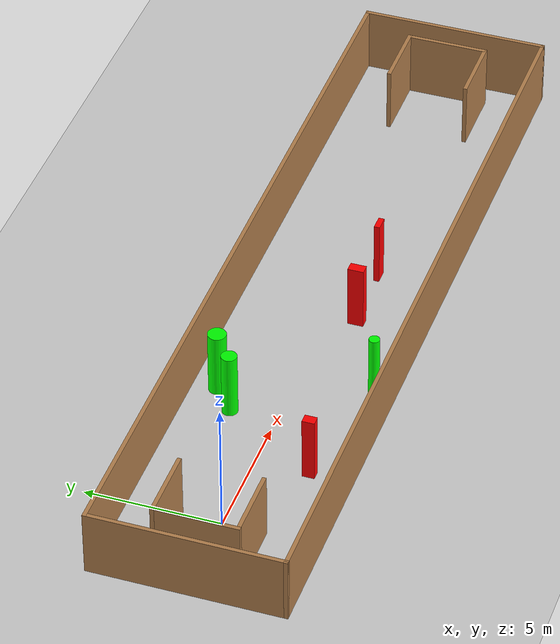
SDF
<sdf version="1.7">
 <world name="default">
  <light name="sun" type="directional">
   <pose>0 0 10 0 -0 0</pose>
   <diffuse>0.8 0.8 0.8 1</diffuse>
   <specular>0.2 0.2 0.2 1</specular>
   <attenuation>
    <range>1000</range>
    <constant>0.9</constant>
    <linear>0.01</linear>
    <quadratic>0.001</quadratic>
   </attenuation>
   <direction>-0.5 0.1 -0.9</direction>
   <spot><inner_angle>0</inner_angle><outer_angle>0</outer_angle><falloff>0</falloff></spot>
  </light>
  <model name="ground_plane">
   <static>1</static>
   <link name="link">
    <collision name="collision">
     <geometry><plane><normal>0 0 1</normal><size>100 100</size></plane></geometry>
     <surface>
      <contact><collide_bitmask>65535</collide_bitmask></contact>
      <friction><ode><mu>100</mu><mu2>50</mu2></ode></friction>
     </surface>
    </collision>
    <visual name="visual">
     <cast_shadows>0</cast_shadows>
     <geometry><plane><normal>0 0 1</normal><size>100 100</size></plane></geometry>
     <material>
      <script><uri>file://media/materials/scripts/gazebo.material</uri><name>Gazebo/Grey</name></script>
     </material>
    </visual>
   </link>
  </model>
  <gravity>0 0 -9.8</gravity>
  <magnetic_field>6e-06 2.3e-05 -4.2e-05</magnetic_field>
  <atmosphere type="adiabatic"/>
  <physics type="ode">
   <max_step_size>0.001</max_step_size>
   <real_time_factor>1</real_time_factor>
   <real_time_update_rate>1000</real_time_update_rate>
  </physics>
  <scene><ambient>0.4 0.4 0.4 1</ambient><background>0.7 0.7 0.7 1</background><shadows>1</shadows></scene>
  <spherical_coordinates>
   <surface_model>EARTH_WGS84</surface_model>
   <latitude_deg>0</latitude_deg>
   <longitude_deg>0</longitude_deg>
   <elevation>0</elevation>
   <heading_deg>0</heading_deg>
  </spherical_coordinates>
  <model name="my_base_walls">
   <link name="Wall_0">
    <collision name="Wall_0_Collision">
     <geometry><box><size>7.15 0.15 2.5</size></box></geometry>
     <pose>0 0 1.25 0 -0 0</pose>
    </collision>
    <visual name="Wall_0_Visual">
     <pose>0 0 1.25 0 -0 0</pose>
     <geometry><box><size>7.15 0.15 2.5</size></box></geometry>
     <material>
      <script><uri>file://media/materials/scripts/gazebo.material</uri><name>Gazebo/Wood</name></script>
      <ambient>1 1 1 1</ambient>
     </material>
     <meta><layer>0</layer></meta>
    </visual>
    <pose>-15 0 0 0 -0 1.5708</pose>
   </link>
   <link name="Wall_10">
    <collision name="Wall_10_Collision">
     <geometry><box><size>2.65 0.15 2.5</size></box></geometry>
     <pose>0 0 1.25 0 -0 0</pose>
    </collision>
    <visual name="Wall_10_Visual">
     <pose>0 0 1.25 0 -0 0</pose>
     <geometry><box><size>2.65 0.15 2.5</size></box></geometry>
     <material>
      <script><uri>file://media/materials/scripts/gazebo.material</uri><name>Gazebo/Wood</name></script>
      <ambient>1 1 1 1</ambient>
     </material>
     <meta><layer>0</layer></meta>
    </visual>
    <pose>-12.75 -1.5 0 0 -0 0</pose>
   </link>
   <link name="Wall_12">
    <collision name="Wall_12_Collision">
     <geometry><box><size>2.65 0.15 2.5</size></box></geometry>
     <pose>0 0 1.25 0 -0 0</pose>
    </collision>
    <visual name="Wall_12_Visual">
     <pose>0 0 1.25 0 -0 0</pose>
     <geometry><box><size>2.65 0.15 2.5</size></box></geometry>
     <material>
      <script><uri>file://media/materials/scripts/gazebo.material</uri><name>Gazebo/Wood</name></script>
      <ambient>1 1 1 1</ambient>
     </material>
     <meta><layer>0</layer></meta>
    </visual>
    <pose>-12.75 1.5 0 0 -0 0</pose>
   </link>
   <link name="Wall_14">
    <collision name="Wall_14_Collision">
     <geometry><box><size>3.15 0.15 2.5</size></box></geometry>
     <pose>0 0 1.25 0 -0 0</pose>
    </collision>
    <visual name="Wall_14_Visual">
     <pose>0 0 1.25 0 -0 0</pose>
     <geometry><box><size>3.15 0.15 2.5</size></box></geometry>
     <material>
      <script><uri>file://media/materials/scripts/gazebo.material</uri><name>Gazebo/Wood</name></script>
      <ambient>1 1 1 1</ambient>
     </material>
     <meta><layer>0</layer></meta>
    </visual>
    <pose>14 0 0 0 -0 -1.5708</pose>
   </link>
   <link name="Wall_15">
    <collision name="Wall_15_Collision">
     <geometry><box><size>2.65 0.15 2.5</size></box></geometry>
     <pose>0 0 1.25 0 -0 0</pose>
    </collision>
    <visual name="Wall_15_Visual">
     <pose>0 0 1.25 0 -0 0</pose>
     <geometry><box><size>2.65 0.15 2.5</size></box></geometry>
     <material>
      <script><uri>file://media/materials/scripts/gazebo.material</uri><name>Gazebo/Wood</name></script>
      <ambient>1 1 1 1</ambient>
     </material>
     <meta><layer>0</layer></meta>
    </visual>
    <pose>12.75 -1.5 0 0 -0 3.14159</pose>
   </link>
   <link name="Wall_17">
    <collision name="Wall_17_Collision">
     <geometry><box><size>2.65 0.15 2.5</size></box></geometry>
     <pose>0 0 1.25 0 -0 0</pose>
    </collision>
    <visual name="Wall_17_Visual">
     <pose>0 0 1.25 0 -0 0</pose>
     <geometry><box><size>2.65 0.15 2.5</size></box></geometry>
     <material>
      <script><uri>file://media/materials/scripts/gazebo.material</uri><name>Gazebo/Wood</name></script>
      <ambient>1 1 1 1</ambient>
     </material>
     <meta><layer>0</layer></meta>
    </visual>
    <pose>12.75 1.5 0 0 -0 3.14159</pose>
   </link>
   <link name="Wall_2">
    <collision name="Wall_2_Collision">
     <geometry><box><size>30.15 0.15 2.5</size></box></geometry>
     <pose>0 0 1.25 0 -0 0</pose>
    </collision>
    <visual name="Wall_2_Visual">
     <pose>0 0 1.25 0 -0 0</pose>
     <geometry><box><size>30.15 0.15 2.5</size></box></geometry>
     <material>
      <script><uri>file://media/materials/scripts/gazebo.material</uri><name>Gazebo/Wood</name></script>
      <ambient>1 1 1 1</ambient>
     </material>
     <meta><layer>0</layer></meta>
    </visual>
    <pose>-0 -3.5 0 0 -0 0</pose>
   </link>
   <link name="Wall_4">
    <collision name="Wall_4_Collision">
     <geometry><box><size>30.15 0.15 2.5</size></box></geometry>
     <pose>0 0 1.25 0 -0 0</pose>
    </collision>
    <visual name="Wall_4_Visual">
     <pose>0 0 1.25 0 -0 0</pose>
     <geometry><box><size>30.15 0.15 2.5</size></box></geometry>
     <material>
      <script><uri>file://media/materials/scripts/gazebo.material</uri><name>Gazebo/Wood</name></script>
      <ambient>1 1 1 1</ambient>
     </material>
     <meta><layer>0</layer></meta>
    </visual>
    <pose>-0 3.5 0 0 -0 0</pose>
   </link>
   <link name="Wall_6">
    <collision name="Wall_6_Collision">
     <geometry><box><size>7.15 0.15 2.5</size></box></geometry>
     <pose>0 0 1.25 0 -0 0</pose>
    </collision>
    <visual name="Wall_6_Visual">
     <pose>0 0 1.25 0 -0 0</pose>
     <geometry><box><size>7.15 0.15 2.5</size></box></geometry>
     <material>
      <script><uri>file://media/materials/scripts/gazebo.material</uri><name>Gazebo/Wood</name></script>
      <ambient>1 1 1 1</ambient>
     </material>
     <meta><layer>0</layer></meta>
    </visual>
    <pose>15 0 0 0 -0 -1.5708</pose>
   </link>
   <link name="Wall_9">
    <collision name="Wall_9_Collision">
     <geometry><box><size>3.15 0.15 2.5</size></box></geometry>
     <pose>0 0 1.25 0 -0 0</pose>
    </collision>
    <visual name="Wall_9_Visual">
     <pose>0 0 1.25 0 -0 0</pose>
     <geometry><box><size>3.15 0.15 2.5</size></box></geometry>
     <material>
      <script><uri>file://media/materials/scripts/gazebo.material</uri><name>Gazebo/Wood</name></script>
      <ambient>1 1 1 1</ambient>
     </material>
     <meta><layer>0</layer></meta>
    </visual>
    <pose>-14 0 0 0 -0 -1.5708</pose>
   </link>
   <static>1</static>
   <pose>11.5 0 0 0 -0 0</pose>
  </model>
  <model name="cylinder1">
   <static>1</static>
   <link name="link">
    <inertial>
     <mass>1</mass>
     <inertia><ixx>0.5</ixx><ixy>0</ixy><ixz>0</ixz><iyy>0.5</iyy><iyz>0</iyz><izz>1</izz></inertia>
    </inertial>
    <collision name="collision">
     <geometry><cylinder><radius>0.34132678900880664</radius><length>2.5</length></cylinder></geometry>
    </collision>
    <visual name="visual">
     <geometry><cylinder><radius>0.34132678900880664</radius><length>2.5</length></cylinder></geometry>
     <material>
      <ambient>0 1 0 1</ambient>
      <diffuse>0 1 0 1</diffuse>
      <specular>0.1 0.1 0.1 1</specular>
      <emissive>0 0 0 0</emissive>
     </material>
    </visual>
   </link>
   <pose>6.507485989583685 2.4941298725310617 1.25 0 0 0</pose>
  </model>
  <model name="cylinder2">
   <static>1</static>
   <link name="link">
    <inertial>
     <mass>1</mass>
     <inertia><ixx>0.5</ixx><ixy>0</ixy><ixz>0</ixz><iyy>0.5</iyy><iyz>0</iyz><izz>1</izz></inertia>
    </inertial>
    <collision name="collision">
     <geometry><cylinder><radius>0.19805310369390922</radius><length>2.5</length></cylinder></geometry>
    </collision>
    <visual name="visual">
     <geometry><cylinder><radius>0.19805310369390922</radius><length>2.5</length></cylinder></geometry>
     <material>
      <ambient>0 1 0 1</ambient>
      <diffuse>0 1 0 1</diffuse>
      <specular>0.1 0.1 0.1 1</specular>
      <emissive>0 0 0 0</emissive>
     </material>
    </visual>
   </link>
   <pose>7.991908035312893 -2.7648170889309625 1.25 0 0 0</pose>
  </model>
  <model name="cylinder3">
   <static>1</static>
   <link name="link">
    <inertial>
     <mass>1</mass>
     <inertia><ixx>0.5</ixx><ixy>0</ixy><ixz>0</ixz><iyy>0.5</iyy><iyz>0</iyz><izz>1</izz></inertia>
    </inertial>
    <collision name="collision">
     <geometry><cylinder><radius>0.2906971889185772</radius><length>2.5</length></cylinder></geometry>
    </collision>
    <visual name="visual">
     <geometry><cylinder><radius>0.2906971889185772</radius><length>2.5</length></cylinder></geometry>
     <material>
      <ambient>0 1 0 1</ambient>
      <diffuse>0 1 0 1</diffuse>
      <specular>0.1 0.1 0.1 1</specular>
      <emissive>0 0 0 0</emissive>
     </material>
    </visual>
   </link>
   <pose>5.538609653608363 1.7040622462363784 1.25 0 0 0</pose>
  </model>
  <model name="box1">
   <static>1</static>
   <link name="link">
    <inertial>
     <mass>1</mass>
     <inertia><ixx>0.083</ixx><ixy>0</ixy><ixz>0</ixz><iyy>0.083</iyy><iyz>0</iyz><izz>0.083</izz></inertia>
    </inertial>
    <collision name="collision">
     <geometry><box><size>0.36312483880738333 0.5912074487269849 2.5</size></box></geometry>
    </collision>
    <visual name="visual">
     <geometry><box><size>0.36312483880738333 0.5912074487269849 2.5</size></box></geometry>
     <material>
      <ambient>1 0 0 1</ambient>
      <diffuse>1 0 0 1</diffuse>
      <specular>0.1 0.1 0.1 1</specular>
      <emissive>0 0 0 0</emissive>
     </material>
    </visual>
    <sensor name="my_contact" type="contact">
     <contact><collision>box_collision</collision><topic>__default_topic__</topic></contact>
    </sensor>
   </link>
   <pose>11.515172572619319 -0.9799808970753454 1.25 0 0 0</pose>
  </model>
  <model name="box2">
   <static>1</static>
   <link name="link">
    <inertial>
     <mass>1</mass>
     <inertia><ixx>0.083</ixx><ixy>0</ixy><ixz>0</ixz><iyy>0.083</iyy><iyz>0</iyz><izz>0.083</izz></inertia>
    </inertial>
    <collision name="collision">
     <geometry><box><size>0.5376915456527475 0.20878909638831739 2.5</size></box></geometry>
    </collision>
    <visual name="visual">
     <geometry><box><size>0.5376915456527475 0.20878909638831739 2.5</size></box></geometry>
     <material>
      <ambient>1 0 0 1</ambient>
      <diffuse>1 0 0 1</diffuse>
      <specular>0.1 0.1 0.1 1</specular>
      <emissive>0 0 0 0</emissive>
     </material>
    </visual>
    <sensor name="my_contact" type="contact">
     <contact><collision>box_collision</collision><topic>__default_topic__</topic></contact>
    </sensor>
   </link>
   <pose>14.198260695940595 -0.9314904731616034 1.25 0 0 0</pose>
  </model>
  <model name="box3">
   <static>1</static>
   <link name="link">
    <inertial>
     <mass>1</mass>
     <inertia><ixx>0.083</ixx><ixy>0</ixy><ixz>0</ixz><iyy>0.083</iyy><iyz>0</iyz><izz>0.083</izz></inertia>
    </inertial>
    <collision name="collision">
     <geometry><box><size>0.3448539566978507 0.45498846925278574 2.5</size></box></geometry>
    </collision>
    <visual name="visual">
     <geometry><box><size>0.3448539566978507 0.45498846925278574 2.5</size></box></geometry>
     <material>
      <ambient>1 0 0 1</ambient>
      <diffuse>1 0 0 1</diffuse>
      <specular>0.1 0.1 0.1 1</specular>
      <emissive>0 0 0 0</emissive>
     </material>
    </visual>
    <sensor name="my_contact" type="contact">
     <contact><collision>box_collision</collision><topic>__default_topic__</topic></contact>
    </sensor>
   </link>
   <pose>3.309505618528691 -1.98673024468347 1.25 0 0 0</pose>
  </model>
 </world>
</sdf>
